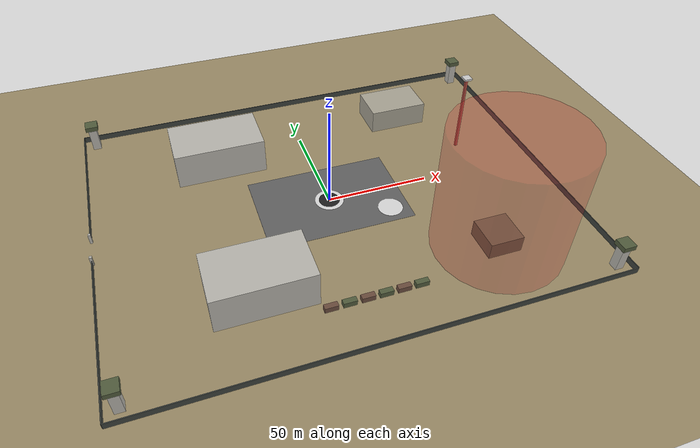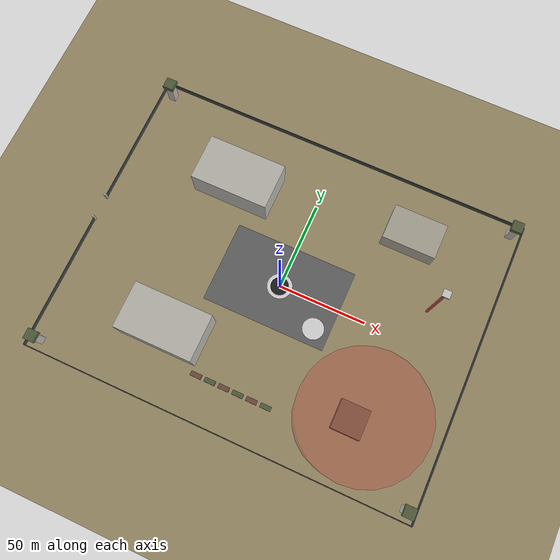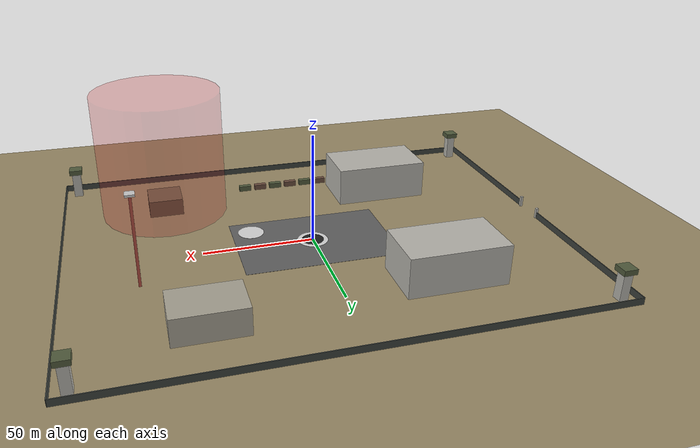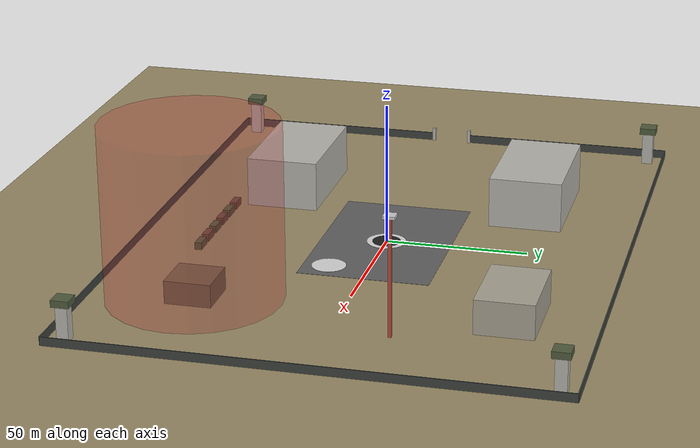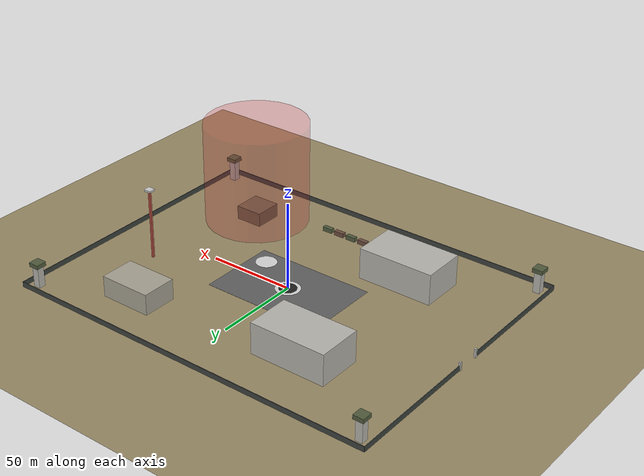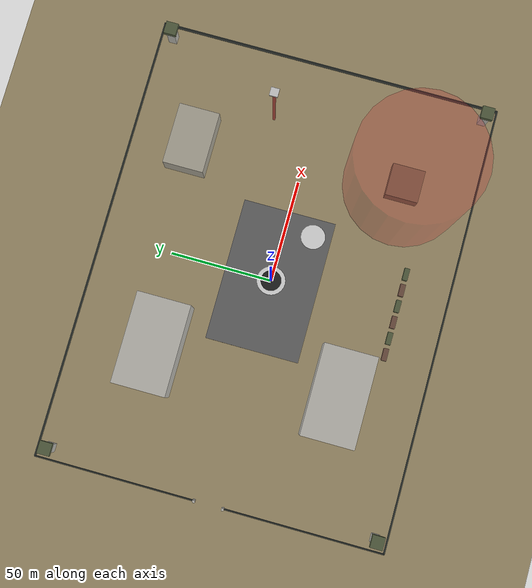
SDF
<?xml version="1.0" encoding="UTF-8"?>
<!-- Generated for Agentic Robotics. Primitives only: no Fuel dependencies, so
     it loads identically offline and on a CPU-only machine. -->
<sdf version="1.9">
  <world name="agr_defense">
    <physics type="ode">
      <max_step_size>0.004</max_step_size>
      <real_time_factor>1.0</real_time_factor>
      <real_time_update_rate>250</real_time_update_rate>
    </physics>
    <gravity>0 0 -9.8</gravity>
    <magnetic_field>6e-06 2.3e-05 -4.2e-05</magnetic_field>
    <atmosphere type="adiabatic"/>
    <scene>
      <grid>false</grid>
      <ambient>0.45 0.45 0.45 1</ambient>
      <background>0.80 0.78 0.70 1</background>
      <shadows>true</shadows>
    </scene>

    <model name="ground_plane">
      <static>true</static>
      <link name="link">
        <collision name="collision">
          <geometry><plane><normal>0 0 1</normal><size>1 1</size></plane></geometry>
          <surface><friction><ode/></friction><bounce/><contact/></surface>
        </collision>
        <visual name="visual">
          <geometry><plane><normal>0 0 1</normal><size>1000 1000</size></plane></geometry>
          <material>
            <ambient>0.6 0.54 0.4 1</ambient>
            <diffuse>0.6 0.54 0.4 1</diffuse>
            <specular>0.1 0.1 0.1 1</specular>
          </material>
        </visual>
      </link>
    </model>

    <light name="sunUTC" type="directional">
      <pose>0 0 500 0 -0 0</pose>
      <cast_shadows>true</cast_shadows>
      <intensity>1</intensity>
      <direction>0.001 0.625 -0.78</direction>
      <diffuse>0.904 0.904 0.904 1</diffuse>
      <specular>0.271 0.271 0.271 1</specular>
      <attenuation><range>2000</range><linear>0</linear><constant>1</constant><quadratic>0</quadratic></attenuation>
      <spot><inner_angle>0</inner_angle><outer_angle>0</outer_angle><falloff>0</falloff></spot>
    </light>

    <spherical_coordinates>
      <surface_model>EARTH_WGS84</surface_model>
      <world_frame_orientation>ENU</world_frame_orientation>
      <latitude_deg>24.621</latitude_deg>
      <longitude_deg>46.715</longitude_deg>
      <elevation>640</elevation>
    </spherical_coordinates>

    <model name="fence_n">
      <static>true</static>
      <pose>0.00 85.00 1.50 0 0 0.0000</pose>
      <link name="link">
        <collision name="c">
          <geometry><box><size>220.0 0.4 3.0</size></box></geometry>
        </collision>
        <visual name="v">
          <geometry><box><size>220.0 0.4 3.0</size></box></geometry>
          <material>
            <ambient>0.24 0.26 0.24 1</ambient>
            <diffuse>0.24 0.26 0.24 1</diffuse>
            <specular>0.2 0.2 0.2 1</specular>
          </material>

        </visual>
      </link>
    </model>
    <model name="fence_s">
      <static>true</static>
      <pose>0.00 -85.00 1.50 0 0 0.0000</pose>
      <link name="link">
        <collision name="c">
          <geometry><box><size>220.0 0.4 3.0</size></box></geometry>
        </collision>
        <visual name="v">
          <geometry><box><size>220.0 0.4 3.0</size></box></geometry>
          <material>
            <ambient>0.24 0.26 0.24 1</ambient>
            <diffuse>0.24 0.26 0.24 1</diffuse>
            <specular>0.2 0.2 0.2 1</specular>
          </material>

        </visual>
      </link>
    </model>
    <model name="fence_e">
      <static>true</static>
      <pose>110.00 0.00 1.50 0 0 0.0000</pose>
      <link name="link">
        <collision name="c">
          <geometry><box><size>0.4 170.0 3.0</size></box></geometry>
        </collision>
        <visual name="v">
          <geometry><box><size>0.4 170.0 3.0</size></box></geometry>
          <material>
            <ambient>0.24 0.26 0.24 1</ambient>
            <diffuse>0.24 0.26 0.24 1</diffuse>
            <specular>0.2 0.2 0.2 1</specular>
          </material>

        </visual>
      </link>
    </model>
    <model name="fence_w_a">
      <static>true</static>
      <pose>-110.00 46.00 1.50 0 0 0.0000</pose>
      <link name="link">
        <collision name="c">
          <geometry><box><size>0.4 78.0 3.0</size></box></geometry>
        </collision>
        <visual name="v">
          <geometry><box><size>0.4 78.0 3.0</size></box></geometry>
          <material>
            <ambient>0.24 0.26 0.24 1</ambient>
            <diffuse>0.24 0.26 0.24 1</diffuse>
            <specular>0.2 0.2 0.2 1</specular>
          </material>

        </visual>
      </link>
    </model>
    <model name="fence_w_b">
      <static>true</static>
      <pose>-110.00 -46.00 1.50 0 0 0.0000</pose>
      <link name="link">
        <collision name="c">
          <geometry><box><size>0.4 78.0 3.0</size></box></geometry>
        </collision>
        <visual name="v">
          <geometry><box><size>0.4 78.0 3.0</size></box></geometry>
          <material>
            <ambient>0.24 0.26 0.24 1</ambient>
            <diffuse>0.24 0.26 0.24 1</diffuse>
            <specular>0.2 0.2 0.2 1</specular>
          </material>

        </visual>
      </link>
    </model>
    <model name="gate_post_a">
      <static>true</static>
      <pose>-110.00 7.00 2.50 0 0 0.0000</pose>
      <link name="link">
        <collision name="c">
          <geometry><box><size>1.2 1.2 5.0</size></box></geometry>
        </collision>
        <visual name="v">
          <geometry><box><size>1.2 1.2 5.0</size></box></geometry>
          <material>
            <ambient>0.72 0.71 0.68 1</ambient>
            <diffuse>0.72 0.71 0.68 1</diffuse>
            <specular>0.2 0.2 0.2 1</specular>
          </material>

        </visual>
      </link>
    </model>
    <model name="gate_post_b">
      <static>true</static>
      <pose>-110.00 -7.00 2.50 0 0 0.0000</pose>
      <link name="link">
        <collision name="c">
          <geometry><box><size>1.2 1.2 5.0</size></box></geometry>
        </collision>
        <visual name="v">
          <geometry><box><size>1.2 1.2 5.0</size></box></geometry>
          <material>
            <ambient>0.72 0.71 0.68 1</ambient>
            <diffuse>0.72 0.71 0.68 1</diffuse>
            <specular>0.2 0.2 0.2 1</specular>
          </material>

        </visual>
      </link>
    </model>
    <model name="tower_ne_base">
      <static>true</static>
      <pose>104.00 79.00 6.00 0 0 0.0000</pose>
      <link name="link">
        <collision name="c">
          <geometry><box><size>4.0 4.0 12.0</size></box></geometry>
        </collision>
        <visual name="v">
          <geometry><box><size>4.0 4.0 12.0</size></box></geometry>
          <material>
            <ambient>0.72 0.71 0.68 1</ambient>
            <diffuse>0.72 0.71 0.68 1</diffuse>
            <specular>0.2 0.2 0.2 1</specular>
          </material>

        </visual>
      </link>
    </model>
    <model name="tower_ne_cab">
      <static>true</static>
      <pose>104.00 79.00 13.20 0 0 0.0000</pose>
      <link name="link">
        <collision name="c">
          <geometry><box><size>6.0 6.0 2.4</size></box></geometry>
        </collision>
        <visual name="v">
          <geometry><box><size>6.0 6.0 2.4</size></box></geometry>
          <material>
            <ambient>0.32 0.36 0.24 1</ambient>
            <diffuse>0.32 0.36 0.24 1</diffuse>
            <specular>0.2 0.2 0.2 1</specular>
          </material>

        </visual>
      </link>
    </model>
    <model name="tower_se_base">
      <static>true</static>
      <pose>104.00 -79.00 6.00 0 0 0.0000</pose>
      <link name="link">
        <collision name="c">
          <geometry><box><size>4.0 4.0 12.0</size></box></geometry>
        </collision>
        <visual name="v">
          <geometry><box><size>4.0 4.0 12.0</size></box></geometry>
          <material>
            <ambient>0.72 0.71 0.68 1</ambient>
            <diffuse>0.72 0.71 0.68 1</diffuse>
            <specular>0.2 0.2 0.2 1</specular>
          </material>

        </visual>
      </link>
    </model>
    <model name="tower_se_cab">
      <static>true</static>
      <pose>104.00 -79.00 13.20 0 0 0.0000</pose>
      <link name="link">
        <collision name="c">
          <geometry><box><size>6.0 6.0 2.4</size></box></geometry>
        </collision>
        <visual name="v">
          <geometry><box><size>6.0 6.0 2.4</size></box></geometry>
          <material>
            <ambient>0.32 0.36 0.24 1</ambient>
            <diffuse>0.32 0.36 0.24 1</diffuse>
            <specular>0.2 0.2 0.2 1</specular>
          </material>

        </visual>
      </link>
    </model>
    <model name="tower_nw_base">
      <static>true</static>
      <pose>-104.00 79.00 6.00 0 0 0.0000</pose>
      <link name="link">
        <collision name="c">
          <geometry><box><size>4.0 4.0 12.0</size></box></geometry>
        </collision>
        <visual name="v">
          <geometry><box><size>4.0 4.0 12.0</size></box></geometry>
          <material>
            <ambient>0.72 0.71 0.68 1</ambient>
            <diffuse>0.72 0.71 0.68 1</diffuse>
            <specular>0.2 0.2 0.2 1</specular>
          </material>

        </visual>
      </link>
    </model>
    <model name="tower_nw_cab">
      <static>true</static>
      <pose>-104.00 79.00 13.20 0 0 0.0000</pose>
      <link name="link">
        <collision name="c">
          <geometry><box><size>6.0 6.0 2.4</size></box></geometry>
        </collision>
        <visual name="v">
          <geometry><box><size>6.0 6.0 2.4</size></box></geometry>
          <material>
            <ambient>0.32 0.36 0.24 1</ambient>
            <diffuse>0.32 0.36 0.24 1</diffuse>
            <specular>0.2 0.2 0.2 1</specular>
          </material>

        </visual>
      </link>
    </model>
    <model name="tower_sw_base">
      <static>true</static>
      <pose>-104.00 -79.00 6.00 0 0 0.0000</pose>
      <link name="link">
        <collision name="c">
          <geometry><box><size>4.0 4.0 12.0</size></box></geometry>
        </collision>
        <visual name="v">
          <geometry><box><size>4.0 4.0 12.0</size></box></geometry>
          <material>
            <ambient>0.72 0.71 0.68 1</ambient>
            <diffuse>0.72 0.71 0.68 1</diffuse>
            <specular>0.2 0.2 0.2 1</specular>
          </material>

        </visual>
      </link>
    </model>
    <model name="tower_sw_cab">
      <static>true</static>
      <pose>-104.00 -79.00 13.20 0 0 0.0000</pose>
      <link name="link">
        <collision name="c">
          <geometry><box><size>6.0 6.0 2.4</size></box></geometry>
        </collision>
        <visual name="v">
          <geometry><box><size>6.0 6.0 2.4</size></box></geometry>
          <material>
            <ambient>0.32 0.36 0.24 1</ambient>
            <diffuse>0.32 0.36 0.24 1</diffuse>
            <specular>0.2 0.2 0.2 1</specular>
          </material>

        </visual>
      </link>
    </model>
    <model name="hangar_1">
      <static>true</static>
      <pose>-45.00 45.00 9.00 0 0 0.0000</pose>
      <link name="link">
        <collision name="c">
          <geometry><box><size>44 26 18</size></box></geometry>
        </collision>
        <visual name="v">
          <geometry><box><size>44 26 18</size></box></geometry>
          <material>
            <ambient>0.72 0.71 0.68 1</ambient>
            <diffuse>0.72 0.71 0.68 1</diffuse>
            <specular>0.2 0.2 0.2 1</specular>
          </material>

        </visual>
      </link>
    </model>
    <model name="hangar_2">
      <static>true</static>
      <pose>-45.00 -45.00 9.00 0 0 0.0000</pose>
      <link name="link">
        <collision name="c">
          <geometry><box><size>44 26 18</size></box></geometry>
        </collision>
        <visual name="v">
          <geometry><box><size>44 26 18</size></box></geometry>
          <material>
            <ambient>0.72 0.71 0.68 1</ambient>
            <diffuse>0.72 0.71 0.68 1</diffuse>
            <specular>0.2 0.2 0.2 1</specular>
          </material>

        </visual>
      </link>
    </model>
    <model name="ops_building">
      <static>true</static>
      <pose>55.00 55.00 6.00 0 0 0.0000</pose>
      <link name="link">
        <collision name="c">
          <geometry><box><size>30 20 12</size></box></geometry>
        </collision>
        <visual name="v">
          <geometry><box><size>30 20 12</size></box></geometry>
          <material>
            <ambient>0.66 0.64 0.58 1</ambient>
            <diffuse>0.66 0.64 0.58 1</diffuse>
            <specular>0.2 0.2 0.2 1</specular>
          </material>

        </visual>
      </link>
    </model>
    <model name="fuel_depot">
      <static>true</static>
      <pose>62.00 -50.00 4.00 0 0 0.0000</pose>
      <link name="link">
        <collision name="c">
          <geometry><box><size>16 16 8</size></box></geometry>
        </collision>
        <visual name="v">
          <geometry><box><size>16 16 8</size></box></geometry>
          <material>
            <ambient>0.45 0.4 0.3 1</ambient>
            <diffuse>0.45 0.4 0.3 1</diffuse>
            <specular>0.2 0.2 0.2 1</specular>
          </material>

        </visual>
      </link>
    </model>
    <model name="apron">
      <static>true</static>
      <pose>0.00 0.00 0.04 0 0 0.0000</pose>
      <link name="link">
        <collision name="c">
          <geometry><box><size>70 46 0.08</size></box></geometry>
        </collision>
        <visual name="v">
          <geometry><box><size>70 46 0.08</size></box></geometry>
          <material>
            <ambient>0.38 0.38 0.38 1</ambient>
            <diffuse>0.38 0.38 0.38 1</diffuse>
            <specular>0.2 0.2 0.2 1</specular>
          </material>

        </visual>
      </link>
    </model>
    <model name="helipad_a">
      <static>true</static>
      <pose>0.00 0.00 0.10 0 0 0</pose>
      <link name="link">
        <collision name="c">
          <geometry><cylinder><radius>7.0</radius><length>0.06</length></cylinder></geometry>
        </collision>
        <visual name="v">
          <geometry><cylinder><radius>7.0</radius><length>0.06</length></cylinder></geometry>
          <material>
            <ambient>0.85 0.85 0.85 1</ambient>
            <diffuse>0.85 0.85 0.85 1</diffuse>
          </material>

        </visual>
      </link>
    </model>
    <model name="helipad_a_ring">
      <static>true</static>
      <pose>0.00 0.00 0.15 0 0 0</pose>
      <link name="link">
        <collision name="c">
          <geometry><cylinder><radius>5.0</radius><length>0.02</length></cylinder></geometry>
        </collision>
        <visual name="v">
          <geometry><cylinder><radius>5.0</radius><length>0.02</length></cylinder></geometry>
          <material>
            <ambient>0.12 0.12 0.12 1</ambient>
            <diffuse>0.12 0.12 0.12 1</diffuse>
          </material>

        </visual>
      </link>
    </model>
    <model name="helipad_b">
      <static>true</static>
      <pose>26.00 -14.00 0.10 0 0 0</pose>
      <link name="link">
        <collision name="c">
          <geometry><cylinder><radius>6.0</radius><length>0.06</length></cylinder></geometry>
        </collision>
        <visual name="v">
          <geometry><cylinder><radius>6.0</radius><length>0.06</length></cylinder></geometry>
          <material>
            <ambient>0.85 0.85 0.85 1</ambient>
            <diffuse>0.85 0.85 0.85 1</diffuse>
          </material>

        </visual>
      </link>
    </model>
    <model name="container_0">
      <static>true</static>
      <pose>-20.00 -62.00 1.30 0 0 0.0000</pose>
      <link name="link">
        <collision name="c">
          <geometry><box><size>6.0 2.5 2.6</size></box></geometry>
        </collision>
        <visual name="v">
          <geometry><box><size>6.0 2.5 2.6</size></box></geometry>
          <material>
            <ambient>0.42 0.3 0.24 1</ambient>
            <diffuse>0.42 0.3 0.24 1</diffuse>
            <specular>0.2 0.2 0.2 1</specular>
          </material>

        </visual>
      </link>
    </model>
    <model name="container_1">
      <static>true</static>
      <pose>-12.00 -62.00 1.30 0 0 0.0000</pose>
      <link name="link">
        <collision name="c">
          <geometry><box><size>6.0 2.5 2.6</size></box></geometry>
        </collision>
        <visual name="v">
          <geometry><box><size>6.0 2.5 2.6</size></box></geometry>
          <material>
            <ambient>0.32 0.36 0.24 1</ambient>
            <diffuse>0.32 0.36 0.24 1</diffuse>
            <specular>0.2 0.2 0.2 1</specular>
          </material>

        </visual>
      </link>
    </model>
    <model name="container_2">
      <static>true</static>
      <pose>-4.00 -62.00 1.30 0 0 0.0000</pose>
      <link name="link">
        <collision name="c">
          <geometry><box><size>6.0 2.5 2.6</size></box></geometry>
        </collision>
        <visual name="v">
          <geometry><box><size>6.0 2.5 2.6</size></box></geometry>
          <material>
            <ambient>0.42 0.3 0.24 1</ambient>
            <diffuse>0.42 0.3 0.24 1</diffuse>
            <specular>0.2 0.2 0.2 1</specular>
          </material>

        </visual>
      </link>
    </model>
    <model name="container_3">
      <static>true</static>
      <pose>4.00 -62.00 1.30 0 0 0.0000</pose>
      <link name="link">
        <collision name="c">
          <geometry><box><size>6.0 2.5 2.6</size></box></geometry>
        </collision>
        <visual name="v">
          <geometry><box><size>6.0 2.5 2.6</size></box></geometry>
          <material>
            <ambient>0.32 0.36 0.24 1</ambient>
            <diffuse>0.32 0.36 0.24 1</diffuse>
            <specular>0.2 0.2 0.2 1</specular>
          </material>

        </visual>
      </link>
    </model>
    <model name="container_4">
      <static>true</static>
      <pose>12.00 -62.00 1.30 0 0 0.0000</pose>
      <link name="link">
        <collision name="c">
          <geometry><box><size>6.0 2.5 2.6</size></box></geometry>
        </collision>
        <visual name="v">
          <geometry><box><size>6.0 2.5 2.6</size></box></geometry>
          <material>
            <ambient>0.42 0.3 0.24 1</ambient>
            <diffuse>0.42 0.3 0.24 1</diffuse>
            <specular>0.2 0.2 0.2 1</specular>
          </material>

        </visual>
      </link>
    </model>
    <model name="container_5">
      <static>true</static>
      <pose>20.00 -62.00 1.30 0 0 0.0000</pose>
      <link name="link">
        <collision name="c">
          <geometry><box><size>6.0 2.5 2.6</size></box></geometry>
        </collision>
        <visual name="v">
          <geometry><box><size>6.0 2.5 2.6</size></box></geometry>
          <material>
            <ambient>0.32 0.36 0.24 1</ambient>
            <diffuse>0.32 0.36 0.24 1</diffuse>
            <specular>0.2 0.2 0.2 1</specular>
          </material>

        </visual>
      </link>
    </model>
    <model name="comms_mast">
      <static>true</static>
      <pose>78.00 20.00 20.00 0 0 0.0000</pose>
      <link name="link">
        <collision name="c">
          <geometry><box><size>1.2 1.2 40.0</size></box></geometry>
        </collision>
        <visual name="v">
          <geometry><box><size>1.2 1.2 40.0</size></box></geometry>
          <material>
            <ambient>0.7 0.3 0.25 1</ambient>
            <diffuse>0.7 0.3 0.25 1</diffuse>
            <specular>0.2 0.2 0.2 1</specular>
          </material>

        </visual>
      </link>
    </model>
    <model name="comms_mast_dish">
      <static>true</static>
      <pose>78.00 20.00 41.00 0 0 0.0000</pose>
      <link name="link">
        <collision name="c">
          <geometry><box><size>4.0 4.0 1.0</size></box></geometry>
        </collision>
        <visual name="v">
          <geometry><box><size>4.0 4.0 1.0</size></box></geometry>
          <material>
            <ambient>0.8 0.8 0.8 1</ambient>
            <diffuse>0.8 0.8 0.8 1</diffuse>
            <specular>0.2 0.2 0.2 1</specular>
          </material>

        </visual>
      </link>
    </model>
    <model name="restricted_zone">
      <static>true</static>
      <pose>62.00 -50.00 30.00 0 0 0</pose>
      <link name="link">
        <visual name="v">
          <geometry><cylinder><radius>30.0</radius><length>60.0</length></cylinder></geometry>
          <material>
            <ambient>0.85 0.15 0.15 1</ambient>
            <diffuse>0.85 0.15 0.15 1</diffuse>
          </material>
          <transparency>0.75</transparency>
        </visual>
      </link>
    </model>
  </world>
</sdf>
